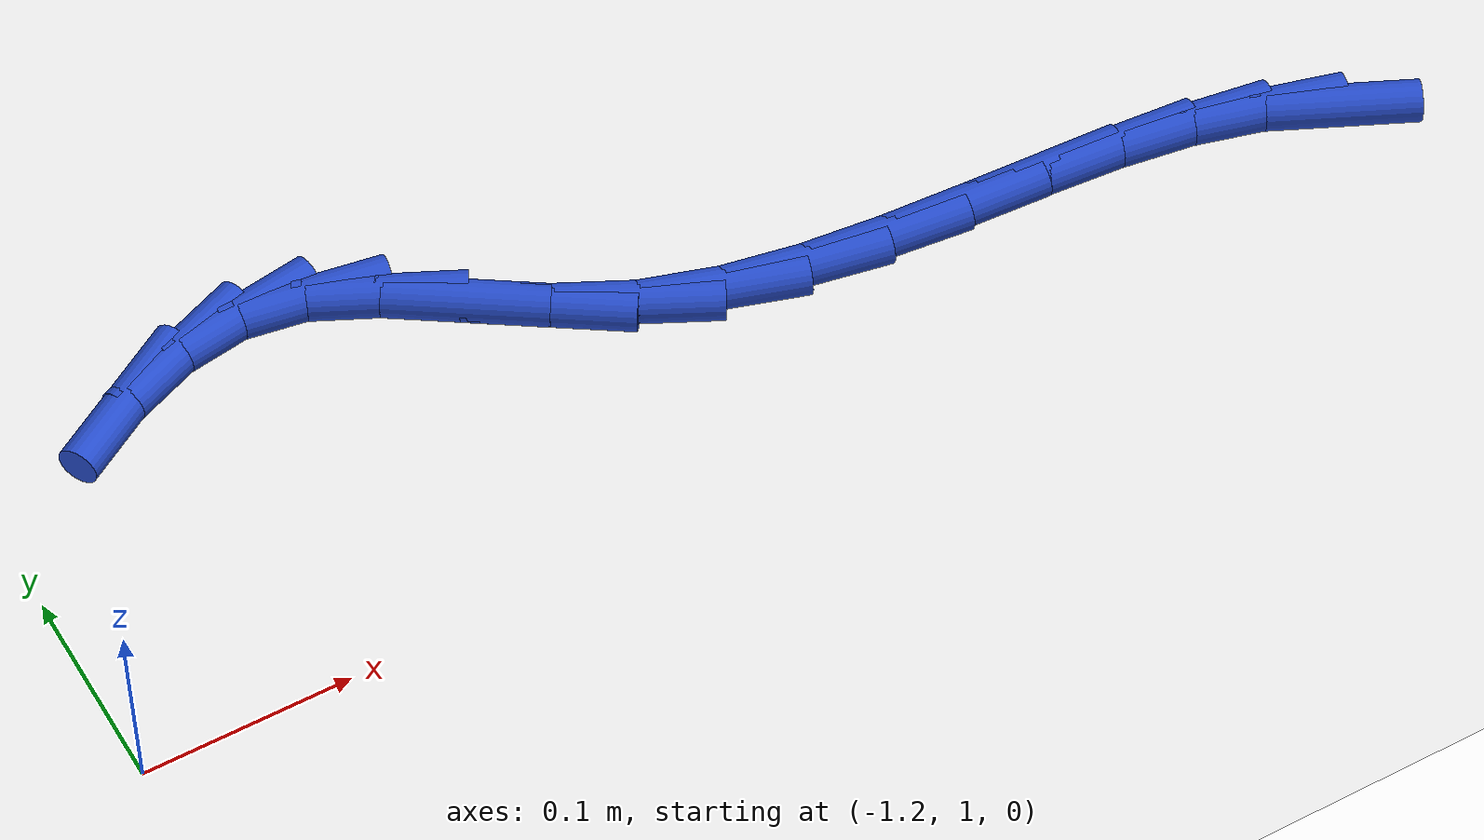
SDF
<sdf version="1.6">
 <world name="default">
  <model name="ground_plane">
   <static>1</static>
   <link name="link">
    <collision name="collision">
     <geometry><plane><normal>0 0 1</normal><size>100 100</size></plane></geometry>
     <surface><friction><ode><mu>100</mu><mu2>50</mu2></ode></friction></surface>
    </collision>
    <visual name="visual">
     <cast_shadows>0</cast_shadows>
     <geometry><plane><normal>0 0 1</normal><size>100 100</size></plane></geometry>
     <material>
      <script><uri>file://media/materials/scripts/gazebo.material</uri><name>Gazebo/WhiteGlow</name></script>
     </material>
    </visual>
   </link>
  </model>
  <model name="line">
   <link name="link_33">
    <pose>-0.5616491666063063 1.0548027886602451 0.01 0 1.57 -0.4359050235113235</pose>
    <collision name="collision">
     <geometry><cylinder><radius>0.01</radius><length>0.08</length></cylinder></geometry>
    </collision>
    <visual name="visual">
     <material>
      <script><name>Gazebo/Blue</name><uri>file://media/materials/scripts/gazebo.material</uri></script>
     </material>
     <geometry><cylinder><radius>0.01</radius><length>0.08</length></cylinder></geometry>
    </visual>
   </link>
   <link name="link_34">
    <pose>-0.5921295218241447 1.0690001589825353 0.01 0 1.57 -0.25916366139390684</pose>
    <collision name="collision">
     <geometry><cylinder><radius>0.01</radius><length>0.08</length></cylinder></geometry>
    </collision>
    <visual name="visual">
     <material>
      <script><name>Gazebo/Blue</name><uri>file://media/materials/scripts/gazebo.material</uri></script>
     </material>
     <geometry><cylinder><radius>0.01</radius><length>0.08</length></cylinder></geometry>
    </visual>
   </link>
   <link name="link_35">
    <pose>-0.6260151588815508 1.0779841297308712 0.01 0 1.57 -0.14052956637237352</pose>
    <collision name="collision">
     <geometry><cylinder><radius>0.01</radius><length>0.08</length></cylinder></geometry>
    </collision>
    <visual name="visual">
     <material>
      <script><name>Gazebo/Blue</name><uri>file://media/materials/scripts/gazebo.material</uri></script>
     </material>
     <geometry><cylinder><radius>0.01</radius><length>0.08</length></cylinder></geometry>
    </visual>
   </link>
   <link name="link_36">
    <pose>-0.6625777891250685 1.0831563532023205 0.01 0 1.57 -0.07159987669794818</pose>
    <collision name="collision">
     <geometry><cylinder><radius>0.01</radius><length>0.08</length></cylinder></geometry>
    </collision>
    <visual name="visual">
     <material>
      <script><name>Gazebo/Blue</name><uri>file://media/materials/scripts/gazebo.material</uri></script>
     </material>
     <geometry><cylinder><radius>0.01</radius><length>0.08</length></cylinder></geometry>
    </visual>
   </link>
   <link name="link_37">
    <pose>-0.7010891239012431 1.0859184816939504 0.01 0 1.57 -0.04410951643993323</pose>
    <collision name="collision">
     <geometry><cylinder><radius>0.01</radius><length>0.08</length></cylinder></geometry>
    </collision>
    <visual name="visual">
     <material>
      <script><name>Gazebo/Blue</name><uri>file://media/materials/scripts/gazebo.material</uri></script>
     </material>
     <geometry><cylinder><radius>0.01</radius><length>0.08</length></cylinder></geometry>
    </visual>
   </link>
   <link name="link_38">
    <pose>-0.7408208745566187 1.0876721675028287 0.01 0 1.57 -0.05332305982390599</pose>
    <collision name="collision">
     <geometry><cylinder><radius>0.01</radius><length>0.08</length></cylinder></geometry>
    </collision>
    <visual name="visual">
     <material>
      <script><name>Gazebo/Blue</name><uri>file://media/materials/scripts/gazebo.material</uri></script>
     </material>
     <geometry><cylinder><radius>0.01</radius><length>0.08</length></cylinder></geometry>
    </visual>
   </link>
   <link name="link_39">
    <pose>-0.7810447524377395 1.0898190629260223 0.01 0 1.57 -0.09825677529094552</pose>
    <collision name="collision">
     <geometry><cylinder><radius>0.01</radius><length>0.08</length></cylinder></geometry>
    </collision>
    <visual name="visual">
     <material>
      <script><name>Gazebo/Blue</name><uri>file://media/materials/scripts/gazebo.material</uri></script>
     </material>
     <geometry><cylinder><radius>0.01</radius><length>0.08</length></cylinder></geometry>
    </visual>
   </link>
   <link name="link_40">
    <pose>-0.8210324688911506 1.093760820260599 0.01 0 1.57 -0.18092321638941208</pose>
    <collision name="collision">
     <geometry><cylinder><radius>0.01</radius><length>0.08</length></cylinder></geometry>
    </collision>
    <visual name="visual">
     <material>
      <script><name>Gazebo/Blue</name><uri>file://media/materials/scripts/gazebo.material</uri></script>
     </material>
     <geometry><cylinder><radius>0.01</radius><length>0.08</length></cylinder></geometry>
    </visual>
   </link>
   <link name="link_41">
    <pose>-0.8600557352633956 1.1008990918036266 0.01 0 1.57 -0.3046080697102999</pose>
    <collision name="collision">
     <geometry><cylinder><radius>0.01</radius><length>0.08</length></cylinder></geometry>
    </collision>
    <visual name="visual">
     <material>
      <script><name>Gazebo/Blue</name><uri>file://media/materials/scripts/gazebo.material</uri></script>
     </material>
     <geometry><cylinder><radius>0.01</radius><length>0.08</length></cylinder></geometry>
    </visual>
   </link>
   <link name="link_42">
    <pose>-0.8973862629010194 1.1126355298521724 0.01 0 1.57 -0.4662531983001789</pose>
    <collision name="collision">
     <geometry><cylinder><radius>0.01</radius><length>0.08</length></cylinder></geometry>
    </collision>
    <visual name="visual">
     <material>
      <script><name>Gazebo/Blue</name><uri>file://media/materials/scripts/gazebo.material</uri></script>
     </material>
     <geometry><cylinder><radius>0.01</radius><length>0.08</length></cylinder></geometry>
    </visual>
   </link>
   <link name="link_43">
    <pose>-0.9323342719702692 1.1302235083274457 0.01 0 1.57 -0.5834662010759961</pose>
    <collision name="collision">
     <geometry><cylinder><radius>0.01</radius><length>0.08</length></cylinder></geometry>
    </collision>
    <visual name="visual">
     <material>
      <script><name>Gazebo/Blue</name><uri>file://media/materials/scripts/gazebo.material</uri></script>
     </material>
     <geometry><cylinder><radius>0.01</radius><length>0.08</length></cylinder></geometry>
    </visual>
   </link>
   <link name="link_44">
    <pose>-0.9650193268606378 1.1518000177387655 0.01 0 1.57 -0.5850541811218599</pose>
    <collision name="collision">
     <geometry><cylinder><radius>0.01</radius><length>0.08</length></cylinder></geometry>
    </collision>
    <visual name="visual">
     <material>
      <script><name>Gazebo/Blue</name><uri>file://media/materials/scripts/gazebo.material</uri></script>
     </material>
     <geometry><cylinder><radius>0.01</radius><length>0.08</length></cylinder></geometry>
    </visual>
   </link>
   <link name="link_45">
    <pose>-0.9963300588764114 1.1725407531329517 0.01 0 1.57 -0.4515366577397495</pose>
    <collision name="collision">
     <geometry><cylinder><radius>0.01</radius><length>0.08</length></cylinder></geometry>
    </collision>
    <visual name="visual">
     <material>
      <script><name>Gazebo/Blue</name><uri>file://media/materials/scripts/gazebo.material</uri></script>
     </material>
     <geometry><cylinder><radius>0.01</radius><length>0.08</length></cylinder></geometry>
    </visual>
   </link>
   <link name="link_46">
    <pose>-1.0271855460992418 1.1875041741096501 0.01 0 1.57 -0.15753588134242896</pose>
    <collision name="collision">
     <geometry><cylinder><radius>0.01</radius><length>0.08</length></cylinder></geometry>
    </collision>
    <visual name="visual">
     <material>
      <script><name>Gazebo/Blue</name><uri>file://media/materials/scripts/gazebo.material</uri></script>
     </material>
     <geometry><cylinder><radius>0.01</radius><length>0.08</length></cylinder></geometry>
    </visual>
   </link>
   <link name="link_47">
    <pose>-1.058397586988972 1.1924622744759585 0.01 0 1.57 0.15557918786977865</pose>
    <collision name="collision">
     <geometry><cylinder><radius>0.01</radius><length>0.08</length></cylinder></geometry>
    </collision>
    <visual name="visual">
     <material>
      <script><name>Gazebo/Blue</name><uri>file://media/materials/scripts/gazebo.material</uri></script>
     </material>
     <geometry><cylinder><radius>0.01</radius><length>0.08</length></cylinder></geometry>
    </visual>
   </link>
   <link name="link_48">
    <pose>-1.0901318044764465 1.1874848665452247 0.01 0 1.57 0.39035812778094003</pose>
    <collision name="collision">
     <geometry><cylinder><radius>0.01</radius><length>0.08</length></cylinder></geometry>
    </collision>
    <visual name="visual">
     <material>
      <script><name>Gazebo/Blue</name><uri>file://media/materials/scripts/gazebo.material</uri></script>
     </material>
     <geometry><cylinder><radius>0.01</radius><length>0.08</length></cylinder></geometry>
    </visual>
   </link>
   <link name="link_49">
    <pose>-1.122313056393677 1.1742431304495673 0.01 0 1.57 0.54718012473671</pose>
    <collision name="collision">
     <geometry><cylinder><radius>0.01</radius><length>0.08</length></cylinder></geometry>
    </collision>
    <visual name="visual">
     <material>
      <script><name>Gazebo/Blue</name><uri>file://media/materials/scripts/gazebo.material</uri></script>
     </material>
     <geometry><cylinder><radius>0.01</radius><length>0.08</length></cylinder></geometry>
    </visual>
   </link>
  </model>
 </world>
</sdf>
